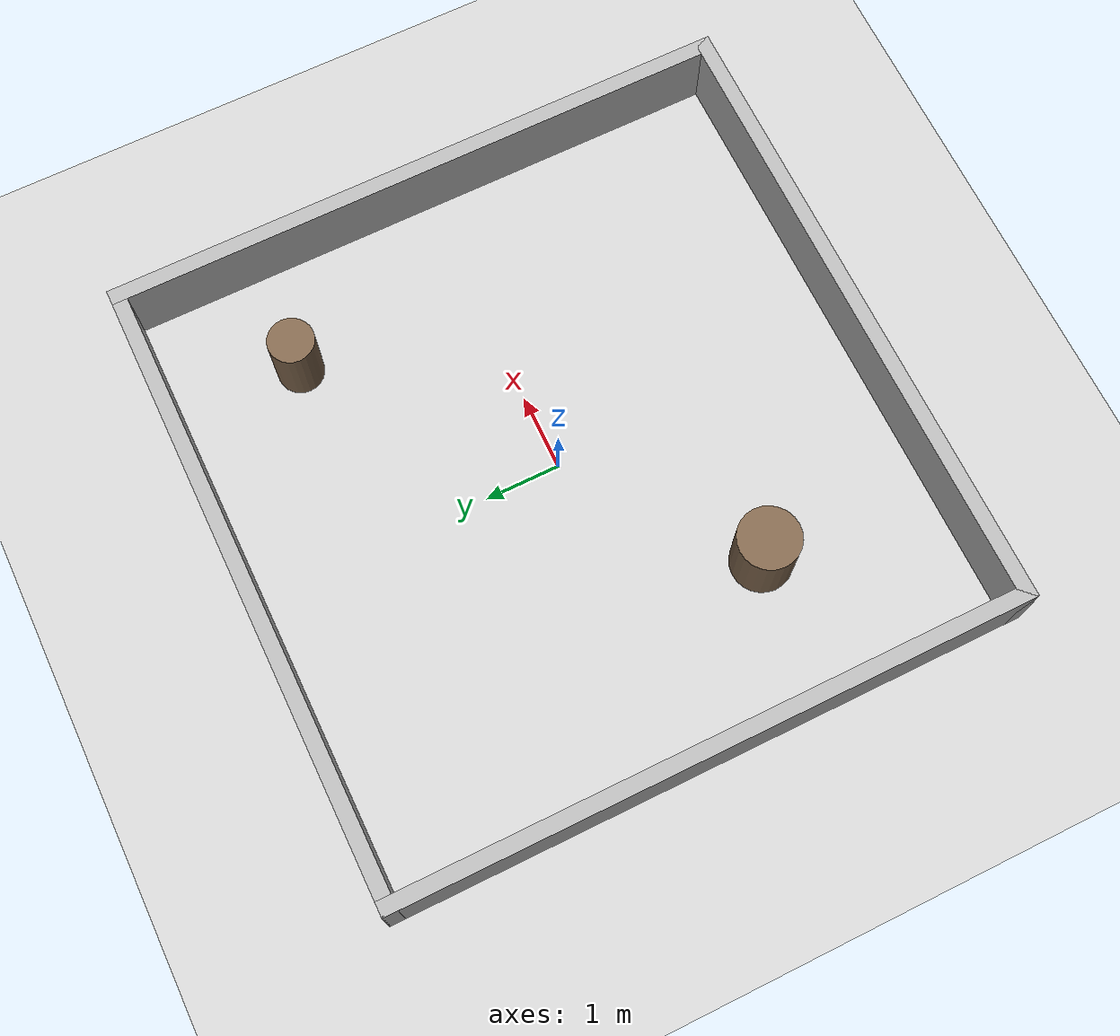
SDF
<?xml version="1.0" ?>
<sdf version="1.6">
  <world name="myrobot_room">
    <include>
      <uri>model://sun</uri>
    </include>
    <include>
      <uri>model://ground_plane</uri>
    </include>

    <model name="room_walls">
      <static>true</static>
      <pose>0 0 0 0 0 0</pose>
      <link name="walls">
        <!-- 8 x 8 m, wall thickness 0.2 m, height 1 m -->
        <collision name="south">
          <pose>0 -4.1 0.5 0 0 0</pose>
          <geometry><box><size>8.4 0.2 1.0</size></box></geometry>
        </collision>
        <visual name="south_visual">
          <pose>0 -4.1 0.5 0 0 0</pose>
          <geometry><box><size>8.4 0.2 1.0</size></box></geometry>
          <material><ambient>0.7 0.7 0.7 1</ambient><diffuse>0.7 0.7 0.7 1</diffuse></material>
        </visual>
        <collision name="north">
          <pose>0 4.1 0.5 0 0 0</pose>
          <geometry><box><size>8.4 0.2 1.0</size></box></geometry>
        </collision>
        <visual name="north_visual">
          <pose>0 4.1 0.5 0 0 0</pose>
          <geometry><box><size>8.4 0.2 1.0</size></box></geometry>
          <material><ambient>0.7 0.7 0.7 1</ambient><diffuse>0.7 0.7 0.7 1</diffuse></material>
        </visual>
        <collision name="west">
          <pose>-4.1 0 0.5 0 0 0</pose>
          <geometry><box><size>0.2 8.4 1.0</size></box></geometry>
        </collision>
        <visual name="west_visual">
          <pose>-4.1 0 0.5 0 0 0</pose>
          <geometry><box><size>0.2 8.4 1.0</size></box></geometry>
          <material><ambient>0.7 0.7 0.7 1</ambient><diffuse>0.7 0.7 0.7 1</diffuse></material>
        </visual>
        <collision name="east">
          <pose>4.1 0 0.5 0 0 0</pose>
          <geometry><box><size>0.2 8.4 1.0</size></box></geometry>
        </collision>
        <visual name="east_visual">
          <pose>4.1 0 0.5 0 0 0</pose>
          <geometry><box><size>0.2 8.4 1.0</size></box></geometry>
          <material><ambient>0.7 0.7 0.7 1</ambient><diffuse>0.7 0.7 0.7 1</diffuse></material>
        </visual>
      </link>
    </model>

    <model name="pillars">
      <static>true</static>
      <pose>0 0 0 0 0 0</pose>
      <link name="pillars_link">
        <collision name="pillar_a">
          <pose>2.6 2.4 0.5 0 0 0</pose>
          <geometry><cylinder><radius>0.3</radius><length>1.0</length></cylinder></geometry>
        </collision>
        <visual name="pillar_a_visual">
          <pose>2.6 2.4 0.5 0 0 0</pose>
          <geometry><cylinder><radius>0.3</radius><length>1.0</length></cylinder></geometry>
          <material><ambient>0.5 0.4 0.3 1</ambient><diffuse>0.5 0.4 0.3 1</diffuse></material>
        </visual>
        <collision name="pillar_b">
          <pose>-2.2 -1.7 0.5 0 0 0</pose>
          <geometry><cylinder><radius>0.4</radius><length>1.0</length></cylinder></geometry>
        </collision>
        <visual name="pillar_b_visual">
          <pose>-2.2 -1.7 0.5 0 0 0</pose>
          <geometry><cylinder><radius>0.4</radius><length>1.0</length></cylinder></geometry>
          <material><ambient>0.5 0.4 0.3 1</ambient><diffuse>0.5 0.4 0.3 1</diffuse></material>
        </visual>
      </link>
    </model>
  </world>
</sdf>
